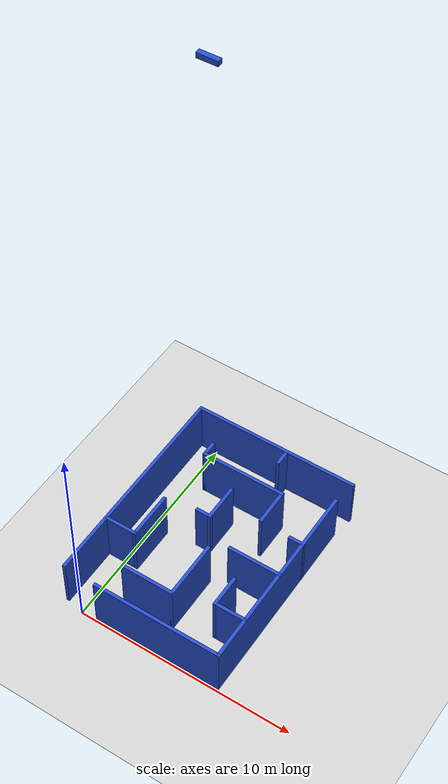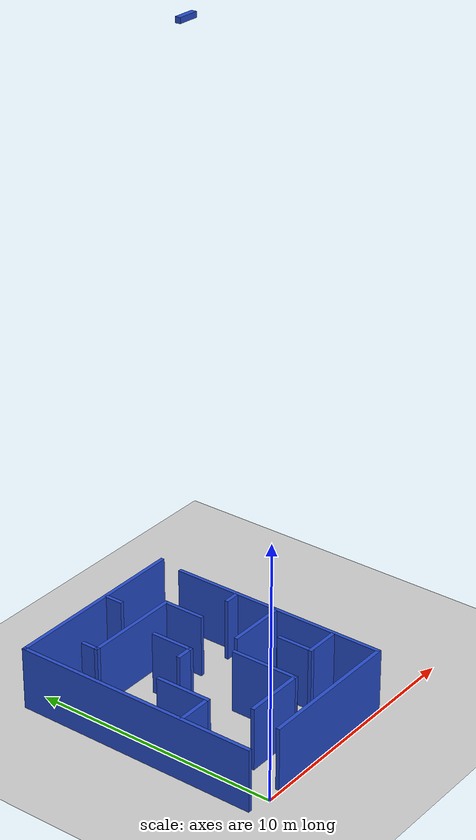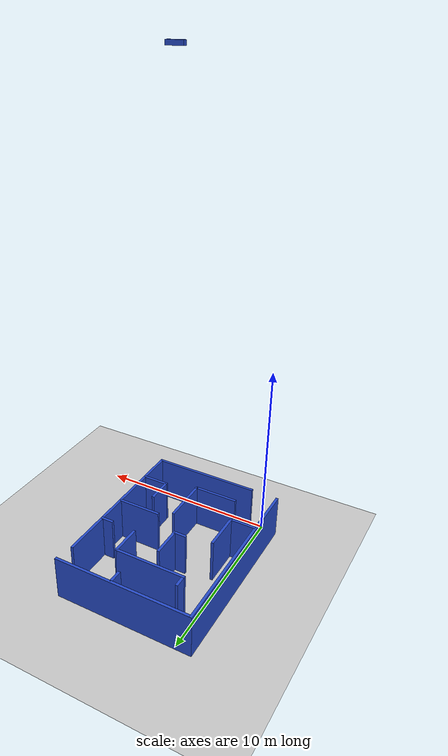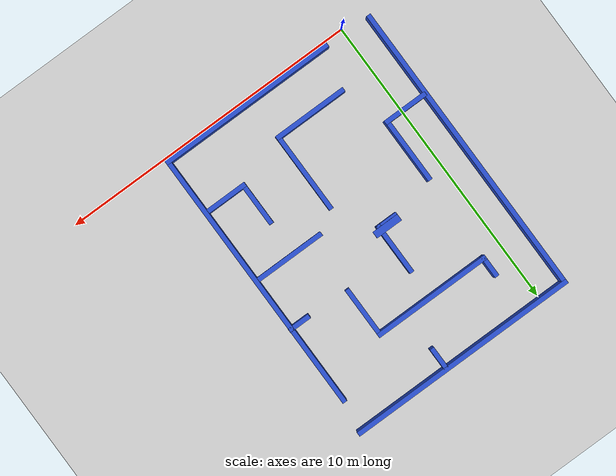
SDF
<sdf version="1.7">
 <world name="default">
  <light name="sun" type="directional">
   <pose>0 0 10 0 -0 0</pose>
   <diffuse>0.8 0.8 0.8 1</diffuse>
   <specular>0.2 0.2 0.2 1</specular>
   <attenuation>
    <range>1000</range>
    <constant>0.9</constant>
    <linear>0.01</linear>
    <quadratic>0.001</quadratic>
   </attenuation>
   <direction>-0.5 0.1 -0.9</direction>
   <spot><inner_angle>0</inner_angle><outer_angle>0</outer_angle><falloff>0</falloff></spot>
  </light>
  <model name="ground_plane">
   <static>1</static>
   <link name="link">
    <collision name="collision">
     <geometry><plane><normal>0 0 1</normal><size>100 100</size></plane></geometry>
     <surface><friction><ode><mu>100</mu><mu2>50</mu2></ode></friction></surface>
    </collision>
    <visual name="visual">
     <cast_shadows>0</cast_shadows>
     <geometry><plane><normal>0 0 1</normal><size>100 100</size></plane></geometry>
     <material>
      <script><uri>file://media/materials/scripts/gazebo.material</uri><name>Gazebo/Grey</name></script>
     </material>
    </visual>
   </link>
  </model>
  <gravity>0 0 -9.8</gravity>
  <magnetic_field>6e-06 2.3e-05 -4.2e-05</magnetic_field>
  <atmosphere type="adiabatic"/>
  <physics type="ode">
   <max_step_size>0.001</max_step_size>
   <real_time_factor>1</real_time_factor>
   <real_time_update_rate>1000</real_time_update_rate>
  </physics>
  <scene><ambient>0.4 0.4 0.4 1</ambient><background>0.7 0.7 0.7 1</background><shadows>0</shadows></scene>
  <spherical_coordinates>
   <surface_model>EARTH_WGS84</surface_model>
   <latitude_deg>0</latitude_deg>
   <longitude_deg>0</longitude_deg>
   <elevation>0</elevation>
   <heading_deg>0</heading_deg>
  </spherical_coordinates>
  <model name="overhead_camera">
   <link name="link_0">
    <inertial>
     <mass>1</mass>
     <inertia>
      <ixx>0.166667</ixx>
      <ixy>0</ixy>
      <ixz>0</ixz>
      <iyy>0.166667</iyy>
      <iyz>0</iyz>
      <izz>0.166667</izz>
     </inertia>
    </inertial>
    <pose>0 2e-06 4.4e-05 0 -0 0</pose>
    <visual name="visual">
     <geometry><box><size>0.8 0.2 0.2</size></box></geometry>
     <material>
      <lighting>1</lighting>
      <script><uri>file://media/materials/scripts/gazebo.material</uri><name>Gazebo/Blue</name></script>
      <shader type="pixel"><normal_map>__default__</normal_map></shader>
      <ambient>0.3 0.3 0.3 1</ambient>
      <diffuse>0.7 0.7 0.7 1</diffuse>
      <specular>0.01 0.01 0.01 1</specular>
      <emissive>0 0 0 1</emissive>
     </material>
     <cast_shadows>0</cast_shadows>
    </visual>
    <collision name="collision">
     <geometry><box><size>0.8 0.2 0.2</size></box></geometry>
     <surface>
      <friction>
       <ode><mu>1</mu><mu2>1</mu2><fdir1>0 0 0</fdir1><slip1>0</slip1><slip2>0</slip2></ode>
       <torsional>
        <coefficient>1</coefficient>
        <patch_radius>0</patch_radius>
        <surface_radius>0</surface_radius>
        <use_patch_radius>1</use_patch_radius>
        <ode><slip>0</slip></ode>
       </torsional>
      </friction>
      <bounce><restitution_coefficient>0</restitution_coefficient><threshold>1e+06</threshold></bounce>
      <contact>
       <collide_without_contact>0</collide_without_contact>
       <collide_without_contact_bitmask>1</collide_without_contact_bitmask>
       <collide_bitmask>1</collide_bitmask>
       <ode>
        <soft_cfm>0</soft_cfm>
        <soft_erp>0.2</soft_erp>
        <kp>1e+13</kp>
        <kd>1</kd>
        <max_vel>0.01</max_vel>
        <min_depth>0</min_depth>
       </ode>
       <bullet>
        <split_impulse>1</split_impulse>
        <split_impulse_penetration_threshold>-0.01</split_impulse_penetration_threshold>
        <soft_cfm>0</soft_cfm>
        <soft_erp>0.2</soft_erp>
        <kp>1e+13</kp>
        <kd>1</kd>
       </bullet>
      </contact>
     </surface>
    </collision>
    <sensor name="upper_camera" type="camera">
     <pose>0 0 0 0 1.57 0</pose>
     <update_rate>30</update_rate>
     <visualize>1</visualize>
     <camera name="head">
      <horizontal_fov>1.0856</horizontal_fov>
      <image><width>1280</width><height>720</height><format>R8G8B8</format></image>
      <clip><near>0.03</near><far>100</far></clip>
      <noise><type>gaussian</type><mean>0</mean><stddev>0.007</stddev></noise>
     </camera>
     <plugin name="camera_controller" filename="libgazebo_ros_camera.so">
      <alwaysOn>1</alwaysOn>
      <updateRate>0.0</updateRate>
      <cameraName>rrbot/upper_camera</cameraName>
      <imageTopicName>image_raw</imageTopicName>
      <cameraInfoTopicName>camera_info</cameraInfoTopicName>
      <frameName>camera_link</frameName>
      <hackBaseline>0.07</hackBaseline>
      <distortionK1>0.0</distortionK1>
      <distortionK2>0.0</distortionK2>
      <distortionK3>0.0</distortionK3>
      <distortionT1>0.0</distortionT1>
      <distortionT2>0.0</distortionT2>
     </plugin>
    </sensor>
   </link>
   <static>1</static>
   <pose>2.7 5.4 25.4 0 -0 0</pose>
  </model>
  <model name="world_6">
   <pose>2.95209 5.08769 0 0 -0 0</pose>
   <link name="Wall_10">
    <collision name="Wall_10_Collision">
     <geometry><box><size>7.75 0.15 2.5</size></box></geometry>
     <pose>0 0 1.25 0 -0 0</pose>
    </collision>
    <visual name="Wall_10_Visual">
     <pose>0 0 1.25 0 -0 0</pose>
     <geometry><box><size>7.75 0.15 2.5</size></box></geometry>
     <material>
      <script><uri>file://media/materials/scripts/gazebo.material</uri><name>Gazebo/Blue</name></script>
      <ambient>1 1 1 1</ambient>
     </material>
     <meta><layer>0</layer></meta>
    </visual>
    <pose>0 5.01269 0 0 -0 0</pose>
   </link>
   <link name="Wall_18">
    <collision name="Wall_18_Collision">
     <geometry><box><size>6 0.15 2.5</size></box></geometry>
     <pose>0 0 1.25 0 -0 0</pose>
    </collision>
    <visual name="Wall_18_Visual">
     <pose>0 0 1.25 0 -0 0</pose>
     <geometry><box><size>6 0.15 2.5</size></box></geometry>
     <material>
      <script><uri>file://media/materials/scripts/gazebo.material</uri><name>Gazebo/Blue</name></script>
      <ambient>1 1 1 1</ambient>
     </material>
     <meta><layer>0</layer></meta>
    </visual>
    <pose>0.698755 -4.92497 0 0 -0 0</pose>
   </link>
   <link name="Wall_19">
    <collision name="Wall_19_Collision">
     <geometry><box><size>9 0.15 2.5</size></box></geometry>
     <pose>0 0 1.25 0 -0 0</pose>
    </collision>
    <visual name="Wall_19_Visual">
     <pose>0 0 1.25 0 -0 0</pose>
     <geometry><box><size>9 0.15 2.5</size></box></geometry>
     <material>
      <script><uri>file://media/materials/scripts/gazebo.material</uri><name>Gazebo/Blue</name></script>
      <ambient>1 1 1 1</ambient>
     </material>
     <meta><layer>0</layer></meta>
    </visual>
    <pose>3.62375 -0.499968 0 0 -0 1.5708</pose>
   </link>
   <link name="Wall_30">
    <collision name="Wall_30_Collision">
     <geometry><box><size>4 0.15 2.5</size></box></geometry>
     <pose>0 0 1.25 0 -0 0</pose>
    </collision>
    <visual name="Wall_30_Visual">
     <pose>0 0 1.25 0 -0 0</pose>
     <geometry><box><size>4 0.15 2.5</size></box></geometry>
     <material>
      <script><uri>file://media/materials/scripts/gazebo.material</uri><name>Gazebo/Blue</name></script>
      <ambient>1 1 1 1</ambient>
     </material>
     <meta><layer>0</layer></meta>
    </visual>
    <pose>-0.346194 2.99459 0 0 -0 0</pose>
   </link>
   <link name="Wall_33">
    <collision name="Wall_33_Collision">
     <geometry><box><size>1.75 0.15 2.5</size></box></geometry>
     <pose>0 0 1.25 0 -0 0</pose>
    </collision>
    <visual name="Wall_33_Visual">
     <pose>0 0 1.25 0 -0 0</pose>
     <geometry><box><size>1.75 0.15 2.5</size></box></geometry>
     <material>
      <script><uri>file://media/materials/scripts/gazebo.material</uri><name>Gazebo/Blue</name></script>
      <ambient>1 1 1 1</ambient>
     </material>
     <meta><layer>0</layer></meta>
    </visual>
    <pose>-0.294056 1.19081 0 0 -0 -1.5708</pose>
   </link>
   <link name="Wall_44">
    <collision name="Wall_44_Collision">
     <geometry><box><size>0.75 0.15 2.5</size></box></geometry>
     <pose>0 0 1.25 0 -0 0</pose>
    </collision>
    <visual name="Wall_44_Visual">
     <pose>0 0 1.25 0 -0 0</pose>
     <geometry><box><size>0.75 0.15 2.5</size></box></geometry>
     <material>
      <script><uri>file://media/materials/scripts/gazebo.material</uri><name>Gazebo/Blue</name></script>
      <ambient>1 1 1 1</ambient>
     </material>
     <meta><layer>0</layer></meta>
    </visual>
    <pose>3.3298 1.29121 0 0 -0 3.14159</pose>
   </link>
   <link name="Wall_48">
    <collision name="Wall_48_Collision">
     <geometry><box><size>0.75 0.15 2.5</size></box></geometry>
     <pose>0 0 1.25 0 -0 0</pose>
    </collision>
    <visual name="Wall_48_Visual">
     <pose>0 0 1.25 0 -0 0</pose>
     <geometry><box><size>0.75 0.15 2.5</size></box></geometry>
     <material>
      <script><uri>file://media/materials/scripts/gazebo.material</uri><name>Gazebo/Blue</name></script>
      <ambient>1 1 1 1</ambient>
     </material>
     <meta><layer>0</layer></meta>
    </visual>
    <pose>0.581622 4.61889 0 0 -0 -1.5708</pose>
   </link>
   <link name="Wall_50">
    <collision name="Wall_50_Collision">
     <geometry><box><size>0.75 0.15 2.5</size></box></geometry>
     <pose>0 0 1.25 0 -0 0</pose>
    </collision>
    <visual name="Wall_50_Visual">
     <pose>0 0 1.25 0 -0 0</pose>
     <geometry><box><size>0.75 0.15 2.5</size></box></geometry>
     <material>
      <script><uri>file://media/materials/scripts/gazebo.material</uri><name>Gazebo/Blue</name></script>
      <ambient>1 1 1 1</ambient>
     </material>
     <meta><layer>0</layer></meta>
    </visual>
    <pose>-2.27119 3.29459 0 0 -0 1.5708</pose>
   </link>
   <link name="Wall_59">
    <collision name="Wall_59_Collision">
     <geometry><box><size>2.5 0.15 2.5</size></box></geometry>
     <pose>0 0 1.25 0 -0 0</pose>
    </collision>
    <visual name="Wall_59_Visual">
     <pose>0 0 1.25 0 -0 0</pose>
     <geometry><box><size>2.5 0.15 2.5</size></box></geometry>
     <material>
      <script><uri>file://media/materials/scripts/gazebo.material</uri><name>Gazebo/Blue</name></script>
      <ambient>1 1 1 1</ambient>
     </material>
     <meta><layer>0</layer></meta>
    </visual>
    <pose>2.4482 -0.482604 0 0 -0 3.14159</pose>
   </link>
   <link name="Wall_62">
    <collision name="Wall_62_Collision">
     <geometry><box><size>1.5 0.15 2.5</size></box></geometry>
     <pose>0 0 1.25 0 -0 0</pose>
    </collision>
    <visual name="Wall_62_Visual">
     <pose>0 0 1.25 0 -0 0</pose>
     <geometry><box><size>1.5 0.15 2.5</size></box></geometry>
     <material>
      <script><uri>file://media/materials/scripts/gazebo.material</uri><name>Gazebo/Blue</name></script>
      <ambient>1 1 1 1</ambient>
     </material>
     <meta><layer>0</layer></meta>
    </visual>
    <pose>2.90283 -3.02325 0 0 -0 3.14159</pose>
   </link>
   <link name="Wall_63">
    <collision name="Wall_63_Collision">
     <geometry><box><size>1.5 0.15 2.5</size></box></geometry>
     <pose>0 0 1.25 0 -0 0</pose>
    </collision>
    <visual name="Wall_63_Visual">
     <pose>0 0 1.25 0 -0 0</pose>
     <geometry><box><size>1.5 0.15 2.5</size></box></geometry>
     <material>
      <script><uri>file://media/materials/scripts/gazebo.material</uri><name>Gazebo/Blue</name></script>
      <ambient>1 1 1 1</ambient>
     </material>
     <meta><layer>0</layer></meta>
    </visual>
    <pose>2.22783 -2.34825 0 0 -0 1.5708</pose>
   </link>
   <link name="Wall_69">
    <collision name="Wall_69_Collision">
     <geometry><box><size>1.5 0.15 2.5</size></box></geometry>
     <pose>0 0 1.25 0 -0 0</pose>
    </collision>
    <visual name="Wall_69_Visual">
     <pose>0 0 1.25 0 -0 0</pose>
     <geometry><box><size>1.5 0.15 2.5</size></box></geometry>
     <material>
      <script><uri>file://media/materials/scripts/gazebo.material</uri><name>Gazebo/Blue</name></script>
      <ambient>1 1 1 1</ambient>
     </material>
     <meta><layer>0</layer></meta>
    </visual>
    <pose>-3.04598 -2.00884 0 0 -0 0</pose>
   </link>
   <link name="Wall_71">
    <collision name="Wall_71_Collision">
     <geometry><box><size>2.25 0.15 2.5</size></box></geometry>
     <pose>0 0 1.25 0 -0 0</pose>
    </collision>
    <visual name="Wall_71_Visual">
     <pose>0 0 1.25 0 -0 0</pose>
     <geometry><box><size>2.25 0.15 2.5</size></box></geometry>
     <material>
      <script><uri>file://media/materials/scripts/gazebo.material</uri><name>Gazebo/Blue</name></script>
      <ambient>1 1 1 1</ambient>
     </material>
     <meta><layer>0</layer></meta>
    </visual>
    <pose>-2.37098 -0.958841 0 0 -0 1.5708</pose>
   </link>
   <link name="Wall_76">
    <collision name="Wall_76_Collision">
     <geometry><box><size>2.5 0.15 2.5</size></box></geometry>
     <pose>0 0 1.25 0 -0 0</pose>
    </collision>
    <visual name="Wall_76_Visual">
     <pose>0 0 1.25 0 -0 0</pose>
     <geometry><box><size>2.5 0.15 2.5</size></box></geometry>
     <material>
      <script><uri>file://media/materials/scripts/gazebo.material</uri><name>Gazebo/Blue</name></script>
      <ambient>1 1 1 1</ambient>
     </material>
     <meta><layer>0</layer></meta>
    </visual>
    <pose>-0.648482 -3.56134 0 0 -0 0</pose>
   </link>
   <link name="Wall_77">
    <collision name="Wall_77_Collision">
     <geometry><box><size>2.75 0.15 2.5</size></box></geometry>
     <pose>0 0 1.25 0 -0 0</pose>
    </collision>
    <visual name="Wall_77_Visual">
     <pose>0 0 1.25 0 -0 0</pose>
     <geometry><box><size>2.75 0.15 2.5</size></box></geometry>
     <material>
      <script><uri>file://media/materials/scripts/gazebo.material</uri><name>Gazebo/Blue</name></script>
      <ambient>1 1 1 1</ambient>
     </material>
     <meta><layer>0</layer></meta>
    </visual>
    <pose>0.526518 -2.26134 0 0 -0 1.5708</pose>
   </link>
   <link name="Wall_79">
    <collision name="Wall_79_Collision">
     <geometry><box><size>0.75 0.15 2.5</size></box></geometry>
     <pose>0 0 1.25 0 -0 0</pose>
    </collision>
    <visual name="Wall_79_Visual">
     <pose>0 0 1.25 0 -0 0</pose>
     <geometry><box><size>0.75 0.15 2.5</size></box></geometry>
     <material>
      <script><uri>file://media/materials/scripts/gazebo.material</uri><name>Gazebo/Blue</name></script>
      <ambient>1 1 1 1</ambient>
     </material>
     <meta><layer>0</layer></meta>
    </visual>
    <pose>-0.594056 0.390813 0 0 -0 3.14159</pose>
   </link>
   <link name="Wall_81">
    <collision name="Wall_81_Collision">
     <geometry><box><size>1.75 0.15 2.5</size></box></geometry>
     <pose>0 0 1.25 0 -0 0</pose>
    </collision>
    <visual name="Wall_81_Visual">
     <pose>0 0 1.25 0 -0 0</pose>
     <geometry><box><size>1.75 0.15 2.5</size></box></geometry>
     <material>
      <script><uri>file://media/materials/scripts/gazebo.material</uri><name>Gazebo/Blue</name></script>
      <ambient>1 1 1 1</ambient>
     </material>
     <meta><layer>0</layer></meta>
    </visual>
    <pose>1.57881 2.19459 0 0 -0 -1.5708</pose>
   </link>
   <link name="Wall_9">
    <collision name="Wall_9_Collision">
     <geometry><box><size>10 0.15 2.5</size></box></geometry>
     <pose>0 0 1.25 0 -0 0</pose>
    </collision>
    <visual name="Wall_9_Visual">
     <pose>0 0 1.25 0 -0 0</pose>
     <geometry><box><size>10 0.15 2.5</size></box></geometry>
     <material>
      <script><uri>file://media/materials/scripts/gazebo.material</uri><name>Gazebo/Blue</name></script>
      <ambient>1 1 1 1</ambient>
     </material>
     <meta><layer>0</layer></meta>
    </visual>
    <pose>-3.8 0.087685 0 0 -0 1.5708</pose>
   </link>
   <static>1</static>
  </model>
 </world>
</sdf>
